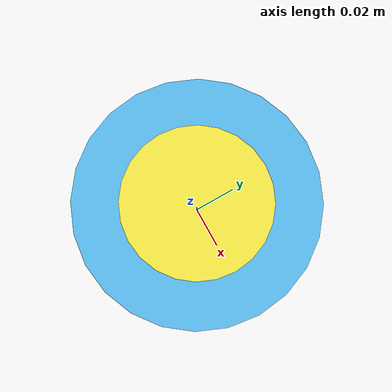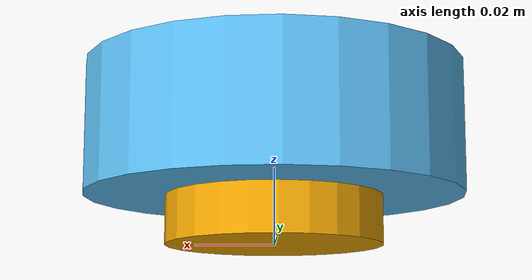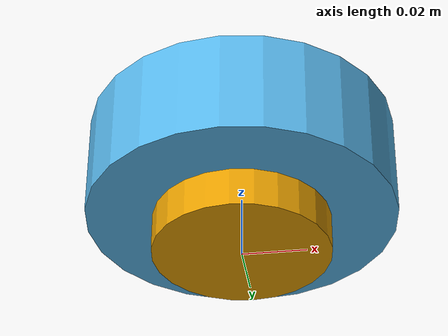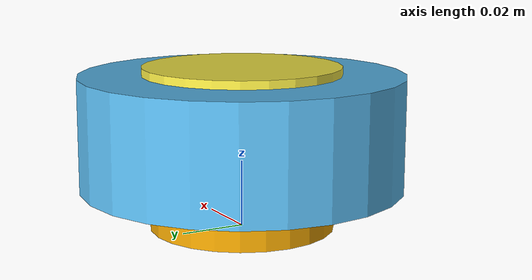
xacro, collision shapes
<?xml version="1.0"?>
<robot xmlns:xacro="http://www.ros.org/wiki/xacro" name="myactuator_rmd">
  <!-- Prefix for multiple actuators in the same URDF -->
  <xacro:arg name="prefix" default=""/>
  <!-- Model of the actuator to be used -->
  <xacro:arg name="actuator" default="X8ProV2"/>
  <!-- Use simulated or real hardware interface -->
  <xacro:arg name="simulation" default="false"/>
  <!-- CAN interface for real hardware interface -->
  <xacro:arg name="ifname" default=""/>
  <!-- CAN id for real hardware interface -->
  <xacro:arg name="actuator_id" default=""/>
  <!-- Timeout duration for the actuator operation -->
  <xacro:arg name="timeout" default="0"/>

  <!-- Define link names -->
  <xacro:property name="parent_link" value="world"/>
  <xacro:property name="child_link" value="child"/>
  <xacro:property name="joint_name" value="joint"/>

  <!-- Actuator -->
  <xacro:property name="actuator_model" value="$(arg actuator)"/>
  <xacro:if value="${actuator_model == 'X8ProV2'}">
    <xacro:include filename="$(find myactuator_rmd_description)/urdf/X8ProV2.xacro"/>
    <xacro:X8ProV2 prefix="$(arg prefix)" joint_name="${joint_name}"
                   simulation="$(arg simulation)"
                   ifname="$(arg ifname)" actuator_id="$(arg actuator_id)"
                   timeout="$(arg timeout)"/>
  </xacro:if>
  <xacro:if value="${actuator_model == 'X12_150'}">
    <xacro:include filename="$(find myactuator_rmd_description)/urdf/X12_150.xacro"/>
    <xacro:X12_150 prefix="$(arg prefix)" joint_name="${joint_name}"
                   simulation="$(arg simulation)"
                   ifname="$(arg ifname)" actuator_id="$(arg actuator_id)"
                   timeout="$(arg timeout)"/>
  </xacro:if>

  <!-- Parent and child link and their fixed joints to the actuator -->
  <link name="${parent_link}"/>
  <link name="${child_link}"/>

  <joint name="${parent_link}_to_actuator" type="fixed">
    <origin xyz="0 0 0" rpy="0 0 0" />
    <parent link="${parent_link}" />
    <child link="$(arg prefix)actuator_backplate" />
  </joint>
  <joint name="actuator_to_${child_link}" type="fixed">
    <origin xyz="0 0 0" rpy="0 0 0" />
    <parent link="$(arg prefix)actuator_shaft_flange" />
    <child link="${child_link}" />
  </joint>

  <!-- Gazebo ros2_control plug-in -->
  <xacro:if value="$(arg simulation)">
    <gazebo>
      <plugin filename="libgazebo_ros2_control.so" name="gazebo_ros2_control">
        <parameters>$(find myactuator_rmd_description)/config/myactuator_rmd_controllers.yaml</parameters>
      </plugin>
    </gazebo>
  </xacro:if>

</robot>

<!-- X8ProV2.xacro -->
<robot xmlns:xacro="http://www.ros.org/wiki/xacro">
  <xacro:include filename="$(find myactuator_rmd_description)/urdf/myactuator_rmd.xacro"/>

  <!-- Provide dimensions for specific actuator -->
  <xacro:macro name="X8ProV2" params="prefix joint_name simulation ifname actuator_id timeout">
    <xacro:myactuator_rmd prefix="${prefix}" joint_name="${joint_name}" simulation="${simulation}"
                          ifname="${ifname}" actuator_id="${actuator_id}"
                          velocity_alpha="0.1" effort_alpha="0.1"
                          torque_constant="2.6"
                          timeout="${timeout}"
                          limit_effort="25.0" limit_lower="${-pi}" limit_upper="${pi}"
                          limit_velocity="${122/60*2*pi}"
                          visual="$(find myactuator_rmd_description)/meshes/visual/X8ProV2/X8ProV2.dae"
                          radius_1="0.028" height_1="0.0125"
                          radius_2="0.049" height_2="0.034"
                          radius_3="0.03"  height_3="0.0025" mass="0.71"/>
  </xacro:macro>

</robot>

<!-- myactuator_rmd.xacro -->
<robot xmlns:xacro="http://www.ros.org/wiki/xacro">

  <!-- Import ros2_control -->
  <xacro:include filename="$(find myactuator_rmd_description)/urdf/myactuator_rmd.ros2_control.xacro" />

  <!-- Macro for inertia matrix for cylinder around its center -->
  <xacro:macro name="cylinder_inertial" params="m x y z radius height">
    <inertial>
      <mass value="${m}"/>
      <origin xyz="${x} ${y} ${z}" rpy="0 0 0"/>
      <inertia ixx="${1/12*m*(3*radius*radius+height*height)}" ixy="0.0" ixz="0.0"
               iyy="${1/12*m*(3*radius*radius+height*height)}" iyz="0.0"
               izz="${1/2*m*radius*radius}"/>
    </inertial>
  </xacro:macro>

  <!-- Actuator geometry -->
  <xacro:macro name="myactuator_rmd" params="prefix joint_name
                                             simulation ifname actuator_id
                                             velocity_alpha:=0.1 effort_alpha:=0.1
                                             torque_constant
                                             timeout
                                             limit_effort limit_lower limit_upper
                                             limit_velocity
                                             visual
                                             radius_1 height_1
                                             radius_2 height_2
                                             radius_3 height_3 mass">

    <!-- Compute the inertial properties of the different parts of the actuator assuming uniform density -->
    <xacro:property name="volume_1" value="${radius_1*radius_1*pi*height_1}"/>
    <xacro:property name="volume_2" value="${radius_2*radius_2*pi*height_2}"/>
    <xacro:property name="volume_3" value="${radius_3*radius_3*pi*height_3}"/>
    <xacro:property name="volume_1_2_3" value="${volume_1+volume_2+volume_3}"/>
    <xacro:property name="mass_1" value="${volume_1/volume_1_2_3*mass}"/>
    <xacro:property name="mass_2" value="${volume_2/volume_1_2_3*mass}"/>
    <xacro:property name="mass_3" value="${volume_3/volume_1_2_3*mass}"/>

    <link name="${prefix}actuator_backplate">
      <visual>
        <geometry>
          <mesh filename="file://${visual}"/>
        </geometry>
      </visual>
      <collision>
        <origin xyz="0 0 ${height_1/2}" rpy="0 0 0"/>
        <geometry>
          <cylinder length="${height_1}" radius="${radius_1}"/>
        </geometry>
      </collision>
      <xacro:cylinder_inertial m="${mass_1}" x="0" y="0" z="${height_1/2}"
                               radius="${radius_1}" height="${height_1}"/>
    </link>

    <link name="${prefix}actuator_back_flange">
      <collision>
        <origin xyz="0 0 ${height_2/2}" rpy="0 0 0"/>
        <geometry>
          <cylinder length="${height_2}" radius="${radius_2}"/>
        </geometry>
      </collision>
      <xacro:cylinder_inertial m="${mass_2}" x="0" y="0" z="${height_2/2}"
                               radius="${radius_2}" height="${height_2}"/>
    </link>

    <joint name="${prefix}actuator_backplate_to_${prefix}actuator_back_flange" type="fixed">
      <origin xyz="0 0 ${height_1}" rpy="0 0 0" />
      <parent link="${prefix}actuator_backplate" />
      <child link="${prefix}actuator_back_flange" />
    </joint>

    <link name="${prefix}actuator_front_flange"/>

    <joint name="${prefix}actuator_back_flange_to_${prefix}actuator_front_flange" type="fixed">
      <origin xyz="0 0 ${height_2}" rpy="0 0 0" />
      <parent link="${prefix}actuator_back_flange" />
      <child link="${prefix}actuator_front_flange" />
    </joint>

    <link name="${prefix}actuator_shaft">
      <collision>
        <origin xyz="0 0 ${height_3/2}" rpy="0 0 0"/>
        <geometry>
          <cylinder length="${height_3}" radius="${radius_3}"/>
        </geometry>
      </collision>
      <xacro:cylinder_inertial m="${mass_3}" x="0" y="0" z="${height_3/2}"
                               radius="${radius_3}" height="${height_3}"/>
    </link>

    <!-- Joint has to be mounted to links with inertial properties  -->
    <joint name="${prefix}${joint_name}" type="revolute">
      <origin xyz="0 0 ${height_2}" rpy="0 0 0" />
      <parent link="${prefix}actuator_back_flange" />
      <child link="${prefix}actuator_shaft" />
      <axis xyz="0 0 1"/>
      <limit effort="${limit_effort}" lower="${limit_lower}" upper="${limit_upper}" velocity="${limit_velocity}"/>
    </joint>

    <link name="${prefix}actuator_shaft_flange"/>

    <joint name="${prefix}actuator_shaft_to_${prefix}actuator_shaft_flange" type="fixed">
      <origin xyz="0 0 ${height_3}" rpy="0 0 0" />
      <parent link="${prefix}actuator_shaft" />
      <child link="${prefix}actuator_shaft_flange" />
    </joint>

    <!-- ros2_control configuration -->
    <xacro:myactuator_rmd_ros2_control name="${prefix}${joint_name}_ros2_control" joint_name="${prefix}${joint_name}" simulation="${simulation}"
                                       ifname="${ifname}" actuator_id="${actuator_id}"
                                       velocity_alpha="${velocity_alpha}" effort_alpha="${effort_alpha}"
                                       torque_constant="${torque_constant}" timeout="${timeout}"/>
  </xacro:macro>

</robot>
